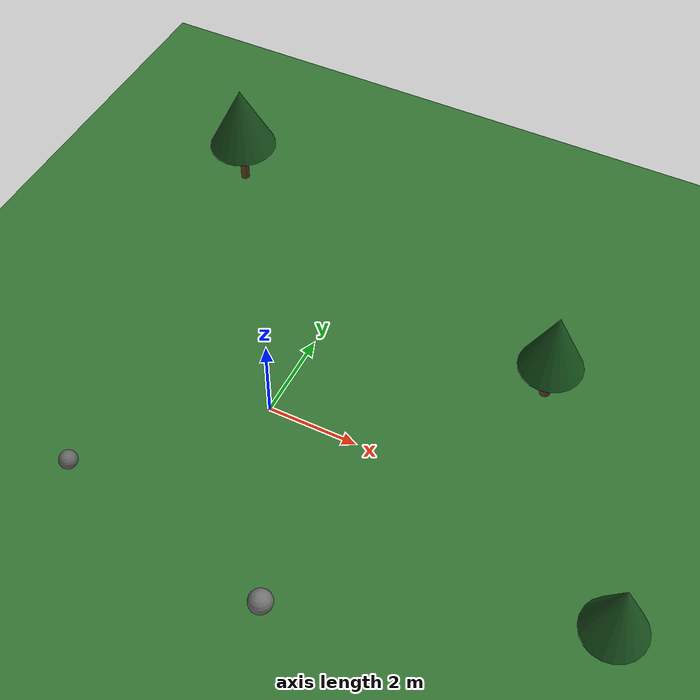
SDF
<?xml version="1.0" ?>
<sdf version="1.9">
  <world name="forest">

    <!-- Physics -->
    <physics name="1ms" type="ignored">
      <max_step_size>0.001</max_step_size>
      <real_time_factor>1.0</real_time_factor>
    </physics>

    <!-- Sun + ambient -->
    <scene>
      <ambient>0.4 0.4 0.4 1</ambient>
      <background>0.7 0.85 1.0 1</background>
    </scene>

    <light name="sun" type="directional">
      <pose>0 0 10 0 0 0</pose>
      <diffuse>1 1 1 1</diffuse>
      <specular>0.2 0.2 0.2 1</specular>
      <direction>-0.3 0.1 -1</direction>
      <cast_shadows>true</cast_shadows>
    </light>

    <!-- Ground -->
    <model name="ground_plane">
      <static>true</static>
      <link name="link">
        <collision name="collision">
          <geometry>
            <plane>
              <normal>0 0 1</normal>
              <size>100 100</size>
            </plane>
          </geometry>
          <surface>
            <friction>
              <ode>
                <mu>1.0</mu>
                <mu2>1.0</mu2>
              </ode>
            </friction>
          </surface>
        </collision>
        <visual name="visual">
          <geometry>
            <plane>
              <normal>0 0 1</normal>
              <size>100 100</size>
            </plane>
          </geometry>
          <material>
            <ambient>0.18 0.35 0.18 1</ambient>
            <diffuse>0.20 0.45 0.20 1</diffuse>
            <specular>0.02 0.02 0.02 1</specular>
          </material>
        </visual>
      </link>
    </model>

    <!-- ======= TREE TEMPLATE (copy-pasted with different poses) ======= -->
    <!-- Each tree: trunk (cylinder) + crown (cone). Collisions simplified. -->

    <!-- Tree 1 -->
    <model name="tree_01">
      <static>true</static>
      <pose>5 3 0 0 0 0</pose>
      <link name="link">
        <collision name="trunk_col">
          <pose>0 0 0.6 0 0 0</pose>
          <geometry><cylinder><radius>0.12</radius><length>1.2</length></cylinder></geometry>
        </collision>
        <visual name="trunk_vis">
          <pose>0 0 0.6 0 0 0</pose>
          <geometry><cylinder><radius>0.12</radius><length>1.2</length></cylinder></geometry>
          <material><diffuse>0.35 0.22 0.12 1</diffuse></material>
        </visual>

        <collision name="crown_col">
          <pose>0 0 1.65 0 0 0</pose>
          <geometry><cone><radius>0.7</radius><length>1.5</length></cone></geometry>
        </collision>
        <visual name="crown_vis">
          <pose>0 0 1.65 0 0 0</pose>
          <geometry><cone><radius>0.7</radius><length>1.5</length></cone></geometry>
          <material><diffuse>0.10 0.35 0.12 1</diffuse></material>
        </visual>
      </link>
    </model>

    <!-- Tree 2 -->
    <model name="tree_02">
      <static>true</static>
      <pose>-4 6 0 0 0 0</pose>
      <link name="link">
        <collision name="trunk_col">
          <pose>0 0 0.7 0 0 0</pose>
          <geometry><cylinder><radius>0.10</radius><length>1.4</length></cylinder></geometry>
        </collision>
        <visual name="trunk_vis">
          <pose>0 0 0.7 0 0 0</pose>
          <geometry><cylinder><radius>0.10</radius><length>1.4</length></cylinder></geometry>
          <material><diffuse>0.35 0.22 0.12 1</diffuse></material>
        </visual>

        <collision name="crown_col">
          <pose>0 0 1.85 0 0 0</pose>
          <geometry><cone><radius>0.8</radius><length>1.6</length></cone></geometry>
        </collision>
        <visual name="crown_vis">
          <pose>0 0 1.85 0 0 0</pose>
          <geometry><cone><radius>0.8</radius><length>1.6</length></cone></geometry>
          <material><diffuse>0.10 0.32 0.12 1</diffuse></material>
        </visual>
      </link>
    </model>

    <!-- Tree 3 -->
    <model name="tree_03">
      <static>true</static>
      <pose>8 -2 0 0 0 0</pose>
      <link name="link">
        <collision name="trunk_col">
          <pose>0 0 0.55 0 0 0</pose>
          <geometry><cylinder><radius>0.09</radius><length>1.1</length></cylinder></geometry></collision>
        <visual name="trunk_vis">
          <pose>0 0 0.55 0 0 0</pose>
          <geometry><cylinder><radius>0.09</radius><length>1.1</length></cylinder></geometry>
          <material><diffuse>0.35 0.22 0.12 1</diffuse></material>
        </visual>

        <collision name="crown_col">
          <pose>0 0 1.55 0 0 0</pose>
          <geometry><cone><radius>0.65</radius><length>1.4</length></cone></geometry>
        </collision>
        <visual name="crown_vis">
          <pose>0 0 1.55 0 0 0</pose>
          <geometry><cone><radius>0.65</radius><length>1.4</length></cone></geometry>
          <material><diffuse>0.12 0.36 0.14 1</diffuse></material>
        </visual>
      </link>
    </model>

    <!-- Some rocks -->
    <model name="rock_01">
      <static>true</static>
      <pose>2 -4 0.12 0 0 0</pose>
      <link name="link">
        <collision name="col">
          <geometry><sphere><radius>0.25</radius></sphere></geometry>
        </collision>
        <visual name="vis">
          <geometry><sphere><radius>0.25</radius></sphere></geometry>
          <material><diffuse>0.45 0.45 0.45 1</diffuse></material>
        </visual>
      </link>
    </model>

    <model name="rock_02">
      <static>true</static>
      <pose>-3 -3 0.10 0 0 0</pose>
      <link name="link">
        <collision name="col">
          <geometry><sphere><radius>0.20</radius></sphere></geometry>
        </collision>
        <visual name="vis">
          <geometry><sphere><radius>0.20</radius></sphere></geometry>
          <material><diffuse>0.40 0.40 0.40 1</diffuse></material>
        </visual>
      </link>
    </model>

  </world>
</sdf>
